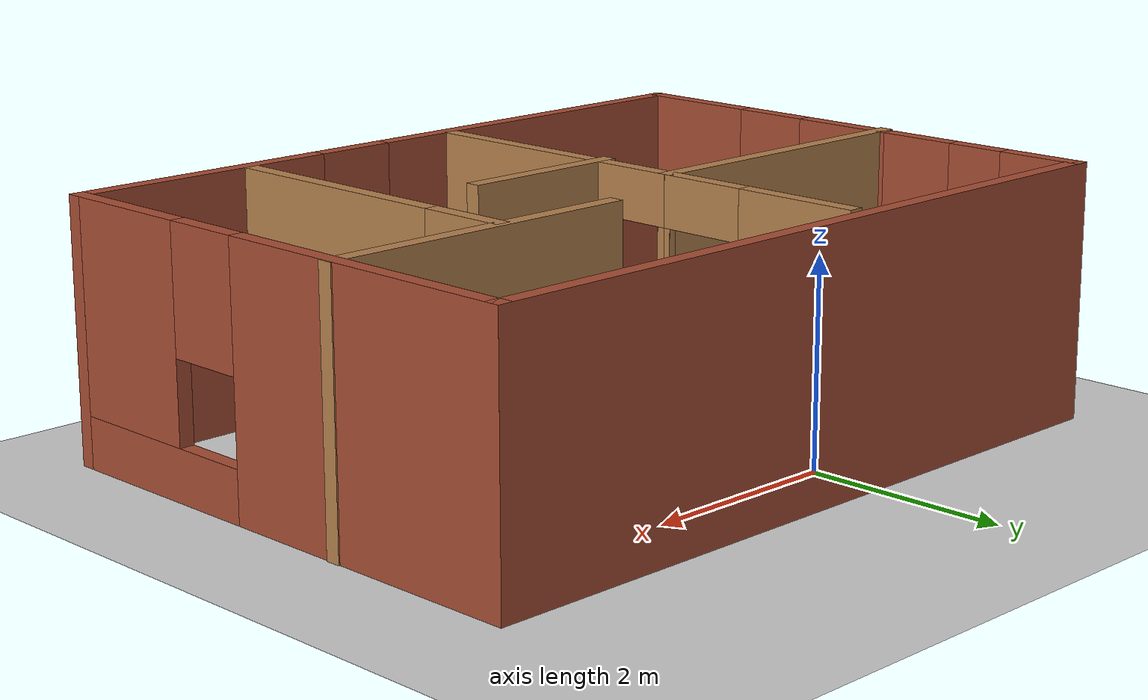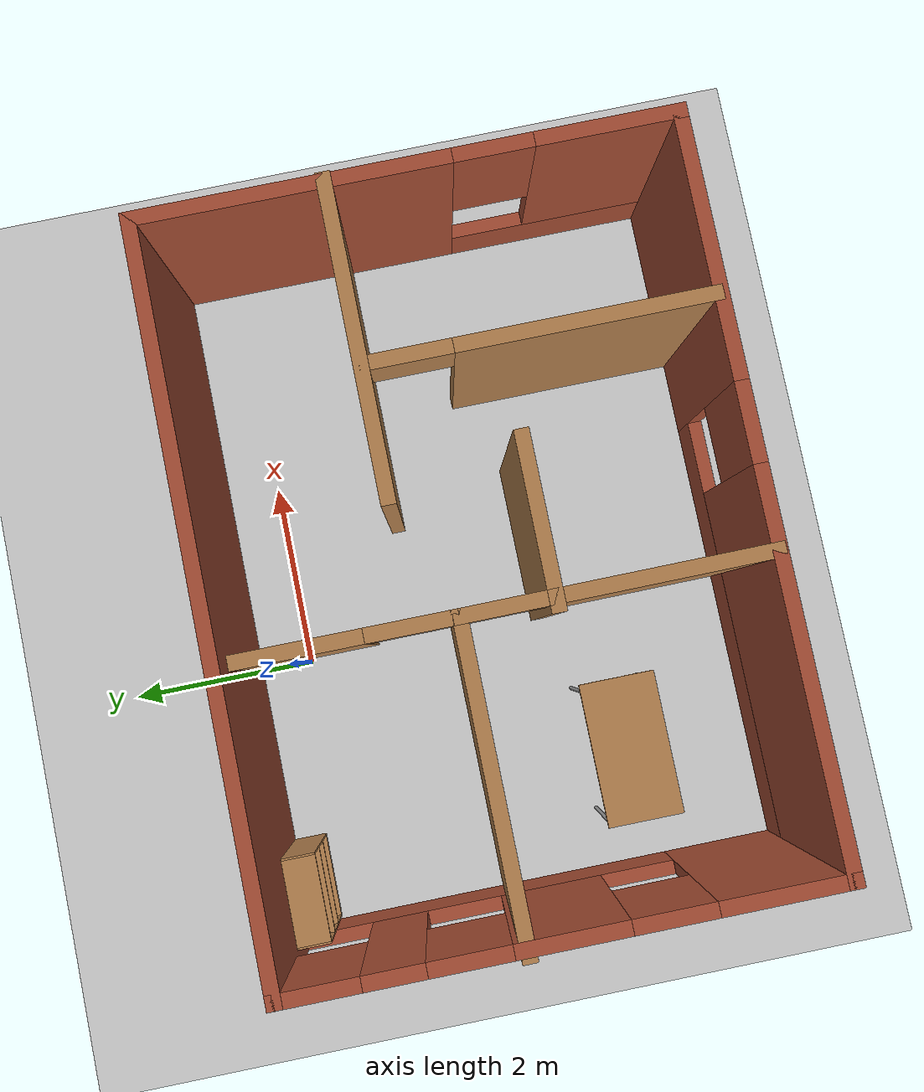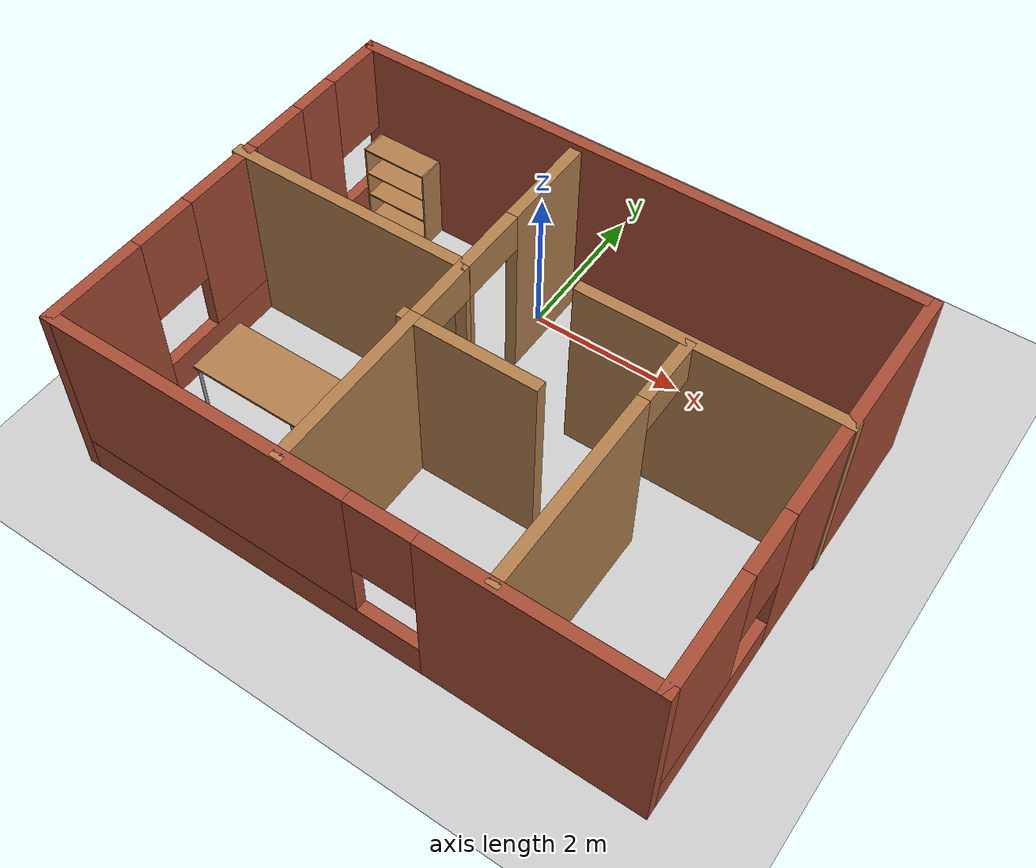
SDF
<sdf version="1.7">
 <world name="default">
  <model name="ground_plane">
   <static>1</static>
   <link name="link">
    <collision name="collision">
     <geometry><plane><normal>0 0 1</normal><size>100 100</size></plane></geometry>
     <surface>
      <contact><collide_bitmask>65535</collide_bitmask></contact>
      <friction><ode><mu>100</mu><mu2>50</mu2></ode></friction>
     </surface>
    </collision>
    <visual name="visual">
     <cast_shadows>0</cast_shadows>
     <geometry><plane><normal>0 0 1</normal><size>100 100</size></plane></geometry>
     <material>
      <script><uri>file://media/materials/scripts/gazebo.material</uri><name>Gazebo/Grey</name></script>
     </material>
    </visual>
   </link>
  </model>
  <model name="floor">
   <pose>0.725685 -2.04075 0 0 -0 0</pose>
   <link name="Wall_0">
    <collision name="Wall_0_Collision">
     <geometry><box><size>7.5 0.15 2.5</size></box></geometry>
     <pose>0 0 1.25 0 -0 0</pose>
    </collision>
    <visual name="Wall_0_Visual">
     <pose>0 0 1.25 0 -0 0</pose>
     <geometry><box><size>7.5 0.15 2.5</size></box></geometry>
     <material>
      <script><uri>file://media/materials/scripts/gazebo.material</uri><name>Gazebo/Bricks</name></script>
      <ambient>1 1 1 1</ambient>
     </material>
     <meta><layer>0</layer></meta>
    </visual>
    <pose>0.019577 2.675 0 0 -0 0</pose>
   </link>
   <link name="Wall_1">
    <pose>3.69458 0 0 0 -0 -1.5708</pose>
    <visual name="Wall_1_Visual_0">
     <pose>-1.146 0 1.25 0 -0 0</pose>
     <geometry><box><size>3.20799 0.15 2.5</size></box></geometry>
     <material>
      <script><uri>file://media/materials/scripts/gazebo.material</uri><name>Gazebo/Bricks</name></script>
      <ambient>1 1 1 1</ambient>
     </material>
     <meta><layer>0</layer></meta>
    </visual>
    <collision name="Wall_1_Collision_0">
     <geometry><box><size>3.20799 0.15 2.5</size></box></geometry>
     <pose>-1.146 0 1.25 0 -0 0</pose>
    </collision>
    <visual name="Wall_1_Visual_1">
     <pose>1.604 0 0.25 0 -0 0</pose>
     <geometry><box><size>2.29201 0.15 0.5</size></box></geometry>
     <material>
      <script><uri>file://media/materials/scripts/gazebo.material</uri><name>Gazebo/Bricks</name></script>
      <ambient>1 1 1 1</ambient>
     </material>
     <meta><layer>0</layer></meta>
    </visual>
    <collision name="Wall_1_Collision_1">
     <geometry><box><size>2.29201 0.15 0.5</size></box></geometry>
     <pose>1.604 0 0.25 0 -0 0</pose>
    </collision>
    <visual name="Wall_1_Visual_2">
     <pose>2.004 0 1.5 0 -0 0</pose>
     <geometry><box><size>1.49201 0.15 2</size></box></geometry>
     <material>
      <script><uri>file://media/materials/scripts/gazebo.material</uri><name>Gazebo/Bricks</name></script>
      <ambient>1 1 1 1</ambient>
     </material>
     <meta><layer>0</layer></meta>
    </visual>
    <collision name="Wall_1_Collision_2">
     <geometry><box><size>1.49201 0.15 2</size></box></geometry>
     <pose>2.004 0 1.5 0 -0 0</pose>
    </collision>
    <visual name="Wall_1_Visual_3">
     <pose>0.857993 0 1.9 0 -0 0</pose>
     <geometry><box><size>0.8 0.15 1.2</size></box></geometry>
     <material>
      <script><uri>file://media/materials/scripts/gazebo.material</uri><name>Gazebo/Bricks</name></script>
      <ambient>1 1 1 1</ambient>
     </material>
     <meta><layer>0</layer></meta>
    </visual>
    <collision name="Wall_1_Collision_3">
     <geometry><box><size>0.8 0.15 1.2</size></box></geometry>
     <pose>0.857993 0 1.9 0 -0 0</pose>
    </collision>
   </link>
   <link name="Wall_13">
    <pose>-0.601278 -1.15532 0 0 -0 1.57519</pose>
    <visual name="Wall_13_Visual_0">
     <pose>-0.454803 0 1.25 0 -0 0</pose>
     <geometry><box><size>2.24871 0.15 2.5</size></box></geometry>
     <material>
      <script><uri>file://media/materials/scripts/gazebo.material</uri><name>Gazebo/Wood</name></script>
      <ambient>1 1 1 1</ambient>
     </material>
     <meta><layer>0</layer></meta>
    </visual>
    <collision name="Wall_13_Collision_0">
     <geometry><box><size>2.24871 0.15 2.5</size></box></geometry>
     <pose>-0.454803 0 1.25 0 -0 0</pose>
    </collision>
    <visual name="Wall_13_Visual_1">
     <pose>1.57436 0 1.25 0 -0 0</pose>
     <geometry><box><size>0.009605 0.15 2.5</size></box></geometry>
     <material>
      <script><uri>file://media/materials/scripts/gazebo.material</uri><name>Gazebo/Wood</name></script>
      <ambient>1 1 1 1</ambient>
     </material>
     <meta><layer>0</layer></meta>
    </visual>
    <collision name="Wall_13_Collision_1">
     <geometry><box><size>0.009605 0.15 2.5</size></box></geometry>
     <pose>1.57436 0 1.25 0 -0 0</pose>
    </collision>
    <visual name="Wall_13_Visual_2">
     <pose>1.11956 0 2.25 0 -0 0</pose>
     <geometry><box><size>0.9 0.15 0.5</size></box></geometry>
     <material>
      <script><uri>file://media/materials/scripts/gazebo.material</uri><name>Gazebo/Wood</name></script>
      <ambient>1 1 1 1</ambient>
     </material>
     <meta><layer>0</layer></meta>
    </visual>
    <collision name="Wall_13_Collision_2">
     <geometry><box><size>0.9 0.15 0.5</size></box></geometry>
     <pose>1.11956 0 2.25 0 -0 0</pose>
    </collision>
   </link>
   <link name="Wall_15">
    <collision name="Wall_15_Collision">
     <geometry><box><size>1.75 0.15 2.5</size></box></geometry>
     <pose>0 0 1.25 0 -0 0</pose>
    </collision>
    <visual name="Wall_15_Visual">
     <pose>0 0 1.25 0 -0 0</pose>
     <geometry><box><size>1.75 0.15 2.5</size></box></geometry>
     <material>
      <script><uri>file://media/materials/scripts/gazebo.material</uri><name>Gazebo/Wood</name></script>
      <ambient>1 1 1 1</ambient>
     </material>
     <meta><layer>0</layer></meta>
    </visual>
    <pose>0.117888 -0.560661 0 0 -0 0</pose>
   </link>
   <link name="Wall_17">
    <pose>1.88893 -0.949489 0 0 -0 1.5708</pose>
    <visual name="Wall_17_Visual_0">
     <pose>-0.450845 0 1.25 0 -0 0</pose>
     <geometry><box><size>2.59831 0.15 2.5</size></box></geometry>
     <material>
      <script><uri>file://media/materials/scripts/gazebo.material</uri><name>Gazebo/Wood</name></script>
      <ambient>1 1 1 1</ambient>
     </material>
     <meta><layer>0</layer></meta>
    </visual>
    <collision name="Wall_17_Collision_0">
     <geometry><box><size>2.59831 0.15 2.5</size></box></geometry>
     <pose>-0.450845 0 1.25 0 -0 0</pose>
    </collision>
    <visual name="Wall_17_Visual_1">
     <pose>1.74916 0 1.25 0 -0 0</pose>
     <geometry><box><size>0.001689 0.15 2.5</size></box></geometry>
     <material>
      <script><uri>file://media/materials/scripts/gazebo.material</uri><name>Gazebo/Wood</name></script>
      <ambient>1 1 1 1</ambient>
     </material>
     <meta><layer>0</layer></meta>
    </visual>
    <collision name="Wall_17_Collision_1">
     <geometry><box><size>0.001689 0.15 2.5</size></box></geometry>
     <pose>1.74916 0 1.25 0 -0 0</pose>
    </collision>
    <visual name="Wall_17_Visual_2">
     <pose>1.29831 0 2.25 0 -0 0</pose>
     <geometry><box><size>0.9 0.15 0.5</size></box></geometry>
     <material>
      <script><uri>file://media/materials/scripts/gazebo.material</uri><name>Gazebo/Wood</name></script>
      <ambient>1 1 1 1</ambient>
     </material>
     <meta><layer>0</layer></meta>
    </visual>
    <collision name="Wall_17_Collision_2">
     <geometry><box><size>0.9 0.15 0.5</size></box></geometry>
     <pose>1.29831 0 2.25 0 -0 0</pose>
    </collision>
   </link>
   <link name="Wall_3">
    <pose>0.019577 -2.675 0 0 -0 3.14159</pose>
    <visual name="Wall_3_Visual_0">
     <pose>-2.38003 0 1.25 0 -0 0</pose>
     <geometry><box><size>2.73994 0.15 2.5</size></box></geometry>
     <material>
      <script><uri>file://media/materials/scripts/gazebo.material</uri><name>Gazebo/Bricks</name></script>
      <ambient>1 1 1 1</ambient>
     </material>
     <meta><layer>0</layer></meta>
    </visual>
    <collision name="Wall_3_Collision_0">
     <geometry><box><size>2.73994 0.15 2.5</size></box></geometry>
     <pose>-2.38003 0 1.25 0 -0 0</pose>
    </collision>
    <visual name="Wall_3_Visual_1">
     <pose>1.36997 0 0.25 0 -0 0</pose>
     <geometry><box><size>4.76006 0.15 0.5</size></box></geometry>
     <material>
      <script><uri>file://media/materials/scripts/gazebo.material</uri><name>Gazebo/Bricks</name></script>
      <ambient>1 1 1 1</ambient>
     </material>
     <meta><layer>0</layer></meta>
    </visual>
    <collision name="Wall_3_Collision_1">
     <geometry><box><size>4.76006 0.15 0.5</size></box></geometry>
     <pose>1.36997 0 0.25 0 -0 0</pose>
    </collision>
    <visual name="Wall_3_Visual_2">
     <pose>1.76997 0 1.5 0 -0 0</pose>
     <geometry><box><size>3.96007 0.15 2</size></box></geometry>
     <material>
      <script><uri>file://media/materials/scripts/gazebo.material</uri><name>Gazebo/Bricks</name></script>
      <ambient>1 1 1 1</ambient>
     </material>
     <meta><layer>0</layer></meta>
    </visual>
    <collision name="Wall_3_Collision_2">
     <geometry><box><size>3.96007 0.15 2</size></box></geometry>
     <pose>1.76997 0 1.5 0 -0 0</pose>
    </collision>
    <visual name="Wall_3_Visual_3">
     <pose>-0.610065 0 1.9 0 -0 0</pose>
     <geometry><box><size>0.8 0.15 1.2</size></box></geometry>
     <material>
      <script><uri>file://media/materials/scripts/gazebo.material</uri><name>Gazebo/Bricks</name></script>
      <ambient>1 1 1 1</ambient>
     </material>
     <meta><layer>0</layer></meta>
    </visual>
    <collision name="Wall_3_Collision_3">
     <geometry><box><size>0.8 0.15 1.2</size></box></geometry>
     <pose>-0.610065 0 1.9 0 -0 0</pose>
    </collision>
   </link>
   <link name="Wall_4">
    <pose>-3.65542 0 0 0 -0 1.5708</pose>
    <visual name="Wall_4_Visual_0">
     <pose>-2.0827 0 1.25 0 -0 0</pose>
     <geometry><box><size>1.3346 0.15 2.5</size></box></geometry>
     <material>
      <script><uri>file://media/materials/scripts/gazebo.material</uri><name>Gazebo/Bricks</name></script>
      <ambient>1 1 1 1</ambient>
     </material>
     <meta><layer>0</layer></meta>
    </visual>
    <collision name="Wall_4_Collision_0">
     <geometry><box><size>1.3346 0.15 2.5</size></box></geometry>
     <pose>-2.0827 0 1.25 0 -0 0</pose>
    </collision>
    <visual name="Wall_4_Visual_1">
     <pose>0.667298 0 0.25 0 -0 0</pose>
     <geometry><box><size>4.1654 0.15 0.5</size></box></geometry>
     <material>
      <script><uri>file://media/materials/scripts/gazebo.material</uri><name>Gazebo/Bricks</name></script>
      <ambient>1 1 1 1</ambient>
     </material>
     <meta><layer>0</layer></meta>
    </visual>
    <collision name="Wall_4_Collision_1">
     <geometry><box><size>4.1654 0.15 0.5</size></box></geometry>
     <pose>0.667298 0 0.25 0 -0 0</pose>
    </collision>
    <visual name="Wall_4_Visual_2">
     <pose>-0.07094 0 1.5 0 -0 0</pose>
     <geometry><box><size>1.08893 0.15 2</size></box></geometry>
     <material>
      <script><uri>file://media/materials/scripts/gazebo.material</uri><name>Gazebo/Bricks</name></script>
      <ambient>1 1 1 1</ambient>
     </material>
     <meta><layer>0</layer></meta>
    </visual>
    <collision name="Wall_4_Collision_2">
     <geometry><box><size>1.08893 0.15 2</size></box></geometry>
     <pose>-0.07094 0 1.5 0 -0 0</pose>
    </collision>
    <visual name="Wall_4_Visual_3">
     <pose>1.57313 0 1.5 0 -0 0</pose>
     <geometry><box><size>0.599205 0.15 2</size></box></geometry>
     <material>
      <script><uri>file://media/materials/scripts/gazebo.material</uri><name>Gazebo/Bricks</name></script>
      <ambient>1 1 1 1</ambient>
     </material>
     <meta><layer>0</layer></meta>
    </visual>
    <collision name="Wall_4_Collision_3">
     <geometry><box><size>0.599205 0.15 2</size></box></geometry>
     <pose>1.57313 0 1.5 0 -0 0</pose>
    </collision>
    <visual name="Wall_4_Visual_4">
     <pose>2.71136 0 1.5 0 -0 0</pose>
     <geometry><box><size>0.077271 0.15 2</size></box></geometry>
     <material>
      <script><uri>file://media/materials/scripts/gazebo.material</uri><name>Gazebo/Bricks</name></script>
      <ambient>1 1 1 1</ambient>
     </material>
     <meta><layer>0</layer></meta>
    </visual>
    <collision name="Wall_4_Collision_4">
     <geometry><box><size>0.077271 0.15 2</size></box></geometry>
     <pose>2.71136 0 1.5 0 -0 0</pose>
    </collision>
    <visual name="Wall_4_Visual_5">
     <pose>-1.0154 0 1.9 0 -0 0</pose>
     <geometry><box><size>0.8 0.15 1.2</size></box></geometry>
     <material>
      <script><uri>file://media/materials/scripts/gazebo.material</uri><name>Gazebo/Bricks</name></script>
      <ambient>1 1 1 1</ambient>
     </material>
     <meta><layer>0</layer></meta>
    </visual>
    <collision name="Wall_4_Collision_5">
     <geometry><box><size>0.8 0.15 1.2</size></box></geometry>
     <pose>-1.0154 0 1.9 0 -0 0</pose>
    </collision>
    <visual name="Wall_4_Visual_6">
     <pose>0.873524 0 1.9 0 -0 0</pose>
     <geometry><box><size>0.8 0.15 1.2</size></box></geometry>
     <material>
      <script><uri>file://media/materials/scripts/gazebo.material</uri><name>Gazebo/Bricks</name></script>
      <ambient>1 1 1 1</ambient>
     </material>
     <meta><layer>0</layer></meta>
    </visual>
    <collision name="Wall_4_Collision_6">
     <geometry><box><size>0.8 0.15 1.2</size></box></geometry>
     <pose>0.873524 0 1.9 0 -0 0</pose>
    </collision>
    <visual name="Wall_4_Visual_7">
     <pose>2.27273 0 1.9 0 -0 0</pose>
     <geometry><box><size>0.8 0.15 1.2</size></box></geometry>
     <material>
      <script><uri>file://media/materials/scripts/gazebo.material</uri><name>Gazebo/Bricks</name></script>
      <ambient>1 1 1 1</ambient>
     </material>
     <meta><layer>0</layer></meta>
    </visual>
    <collision name="Wall_4_Collision_7">
     <geometry><box><size>0.8 0.15 1.2</size></box></geometry>
     <pose>2.27273 0 1.9 0 -0 0</pose>
    </collision>
   </link>
   <link name="Wall_6">
    <collision name="Wall_6_Collision">
     <geometry><box><size>3.25 0.15 2.5</size></box></geometry>
     <pose>0 0 1.25 0 -0 0</pose>
    </collision>
    <visual name="Wall_6_Visual">
     <pose>0 0 1.25 0 -0 0</pose>
     <geometry><box><size>3.25 0.15 2.5</size></box></geometry>
     <material>
      <script><uri>file://media/materials/scripts/gazebo.material</uri><name>Gazebo/Wood</name></script>
      <ambient>1 1 1 1</ambient>
     </material>
     <meta><layer>0</layer></meta>
    </visual>
    <pose>-2.15789 0.348822 0 0 -0 0</pose>
   </link>
   <link name="Wall_7">
    <pose>-0.607893 1.39882 0 0 -0 1.5708</pose>
    <visual name="Wall_7_Visual_0">
     <pose>-1.08513 0 1.25 0 -0 0</pose>
     <geometry><box><size>0.079742 0.15 2.5</size></box></geometry>
     <material>
      <script><uri>file://media/materials/scripts/gazebo.material</uri><name>Gazebo/Wood</name></script>
      <ambient>1 1 1 1</ambient>
     </material>
     <meta><layer>0</layer></meta>
    </visual>
    <collision name="Wall_7_Collision_0">
     <geometry><box><size>0.079742 0.15 2.5</size></box></geometry>
     <pose>-1.08513 0 1.25 0 -0 0</pose>
    </collision>
    <visual name="Wall_7_Visual_1">
     <pose>0.489871 0 1.25 0 -0 0</pose>
     <geometry><box><size>1.27026 0.15 2.5</size></box></geometry>
     <material>
      <script><uri>file://media/materials/scripts/gazebo.material</uri><name>Gazebo/Wood</name></script>
      <ambient>1 1 1 1</ambient>
     </material>
     <meta><layer>0</layer></meta>
    </visual>
    <collision name="Wall_7_Collision_1">
     <geometry><box><size>1.27026 0.15 2.5</size></box></geometry>
     <pose>0.489871 0 1.25 0 -0 0</pose>
    </collision>
    <visual name="Wall_7_Visual_2">
     <pose>-0.595258 0 2.25 0 -0 0</pose>
     <geometry><box><size>0.9 0.15 0.5</size></box></geometry>
     <material>
      <script><uri>file://media/materials/scripts/gazebo.material</uri><name>Gazebo/Wood</name></script>
      <ambient>1 1 1 1</ambient>
     </material>
     <meta><layer>0</layer></meta>
    </visual>
    <collision name="Wall_7_Collision_2">
     <geometry><box><size>0.9 0.15 0.5</size></box></geometry>
     <pose>-0.595258 0 2.25 0 -0 0</pose>
    </collision>
   </link>
   <link name="Wall_9">
    <collision name="Wall_9_Collision">
     <geometry><box><size>3.25 0.15 2.5</size></box></geometry>
     <pose>0 0 1.25 0 -0 0</pose>
    </collision>
    <visual name="Wall_9_Visual">
     <pose>0 0 1.25 0 -0 0</pose>
     <geometry><box><size>3.25 0.15 2.5</size></box></geometry>
     <material>
      <script><uri>file://media/materials/scripts/gazebo.material</uri><name>Gazebo/Wood</name></script>
      <ambient>1 1 1 1</ambient>
     </material>
     <meta><layer>0</layer></meta>
    </visual>
    <pose>2.15789 0.786073 0 0 -0 3.14159</pose>
   </link>
   <static>1</static>
  </model>
  <model name="table">
   <static>1</static>
   <link name="link">
    <collision name="surface">
     <pose>0 0 1 0 -0 0</pose>
     <geometry><box><size>1.5 0.8 0.03</size></box></geometry>
     <surface><friction><ode><mu>0.6</mu><mu2>0.6</mu2></ode></friction></surface>
    </collision>
    <visual name="visual1">
     <pose>0 0 1 0 -0 0</pose>
     <geometry><box><size>1.5 0.8 0.03</size></box></geometry>
     <material>
      <script><uri>file://media/materials/scripts/gazebo.material</uri><name>Gazebo/Wood</name></script>
     </material>
    </visual>
    <collision name="front_left_leg">
     <pose>0.68 0.38 0.5 0 -0 0</pose>
     <geometry><cylinder><radius>0.02</radius><length>1</length></cylinder></geometry>
    </collision>
    <visual name="front_left_leg">
     <pose>0.68 0.38 0.5 0 -0 0</pose>
     <geometry><cylinder><radius>0.02</radius><length>1</length></cylinder></geometry>
     <material>
      <script><uri>file://media/materials/scripts/gazebo.material</uri><name>Gazebo/Grey</name></script>
     </material>
    </visual>
    <collision name="front_right_leg">
     <pose>0.68 -0.38 0.5 0 -0 0</pose>
     <geometry><cylinder><radius>0.02</radius><length>1</length></cylinder></geometry>
    </collision>
    <visual name="front_right_leg">
     <pose>0.68 -0.38 0.5 0 -0 0</pose>
     <geometry><cylinder><radius>0.02</radius><length>1</length></cylinder></geometry>
     <material>
      <script><uri>file://media/materials/scripts/gazebo.material</uri><name>Gazebo/Grey</name></script>
     </material>
    </visual>
    <collision name="back_right_leg">
     <pose>-0.68 -0.38 0.5 0 -0 0</pose>
     <geometry><cylinder><radius>0.02</radius><length>1</length></cylinder></geometry>
    </collision>
    <visual name="back_right_leg">
     <pose>-0.68 -0.38 0.5 0 -0 0</pose>
     <geometry><cylinder><radius>0.02</radius><length>1</length></cylinder></geometry>
     <material>
      <script><uri>file://media/materials/scripts/gazebo.material</uri><name>Gazebo/Grey</name></script>
     </material>
    </visual>
    <collision name="back_left_leg">
     <pose>-0.68 0.38 0.5 0 -0 0</pose>
     <geometry><cylinder><radius>0.02</radius><length>1</length></cylinder></geometry>
    </collision>
    <visual name="back_left_leg">
     <pose>-0.68 0.38 0.5 0 -0 0</pose>
     <geometry><cylinder><radius>0.02</radius><length>1</length></cylinder></geometry>
     <material>
      <script><uri>file://media/materials/scripts/gazebo.material</uri><name>Gazebo/Grey</name></script>
     </material>
    </visual>
   </link>
   <pose>-1.54771 -3.19407 0 0 -0 0</pose>
  </model>
  <model name="bookshelf">
   <static>1</static>
   <link name="link">
    <inertial><mass>1</mass></inertial>
    <collision name="back">
     <pose>0 0.005 0.6 0 -0 0</pose>
     <geometry><box><size>0.9 0.01 1.2</size></box></geometry>
    </collision>
    <visual name="visual1">
     <pose>0 0.005 0.6 0 -0 0</pose>
     <geometry><box><size>0.9 0.01 1.2</size></box></geometry>
     <material>
      <script><uri>file://media/materials/scripts/gazebo.material</uri><name>Gazebo/Wood</name></script>
     </material>
    </visual>
    <collision name="left_side">
     <pose>0.45 -0.195 0.6 0 -0 0</pose>
     <geometry><box><size>0.02 0.4 1.2</size></box></geometry>
    </collision>
    <visual name="visual2">
     <pose>0.45 -0.195 0.6 0 -0 0</pose>
     <geometry><box><size>0.02 0.4 1.2</size></box></geometry>
     <material>
      <script><uri>file://media/materials/scripts/gazebo.material</uri><name>Gazebo/Wood</name></script>
     </material>
    </visual>
    <collision name="right_side">
     <pose>-0.45 -0.195 0.6 0 -0 0</pose>
     <geometry><box><size>0.02 0.4 1.2</size></box></geometry>
    </collision>
    <visual name="visual3">
     <pose>-0.45 -0.195 0.6 0 -0 0</pose>
     <geometry><box><size>0.02 0.4 1.2</size></box></geometry>
     <material>
      <script><uri>file://media/materials/scripts/gazebo.material</uri><name>Gazebo/Wood</name></script>
     </material>
    </visual>
    <collision name="bottom">
     <pose>0 -0.195 0.03 0 -0 0</pose>
     <geometry><box><size>0.88 0.4 0.06</size></box></geometry>
    </collision>
    <visual name="visual4">
     <pose>0 -0.195 0.03 0 -0 0</pose>
     <geometry><box><size>0.88 0.4 0.06</size></box></geometry>
     <material>
      <script><uri>file://media/materials/scripts/gazebo.material</uri><name>Gazebo/Wood</name></script>
     </material>
    </visual>
    <collision name="top">
     <pose>0 -0.195 1.19 0 -0 0</pose>
     <geometry><box><size>0.88 0.4 0.02</size></box></geometry>
    </collision>
    <visual name="visual5">
     <pose>0 -0.195 1.19 0 -0 0</pose>
     <geometry><box><size>0.88 0.4 0.02</size></box></geometry>
     <material>
      <script><uri>file://media/materials/scripts/gazebo.material</uri><name>Gazebo/Wood</name></script>
     </material>
    </visual>
    <collision name="low_shelf">
     <pose>0 -0.195 0.43 0 -0 0</pose>
     <geometry><box><size>0.88 0.4 0.02</size></box></geometry>
    </collision>
    <visual name="visual6">
     <pose>0 -0.195 0.43 0 -0 0</pose>
     <geometry><box><size>0.88 0.4 0.02</size></box></geometry>
     <material>
      <script><uri>file://media/materials/scripts/gazebo.material</uri><name>Gazebo/Wood</name></script>
     </material>
    </visual>
    <collision name="high_shelf">
     <pose>0 -0.195 0.8 0 -0 0</pose>
     <geometry><box><size>0.88 0.4 0.02</size></box></geometry>
    </collision>
    <visual name="visual7">
     <pose>0 -0.195 0.8 0 -0 0</pose>
     <geometry><box><size>0.88 0.4 0.02</size></box></geometry>
     <material>
      <script><uri>file://media/materials/scripts/gazebo.material</uri><name>Gazebo/Wood</name></script>
     </material>
    </visual>
   </link>
   <pose>-2.36134 0.601489 0 0 -0 0</pose>
  </model>
 </world>
</sdf>
